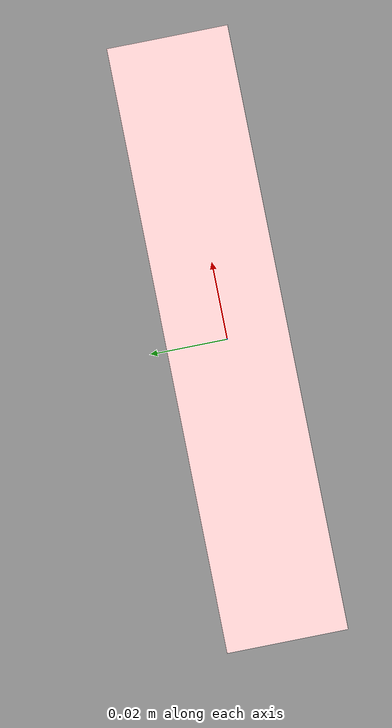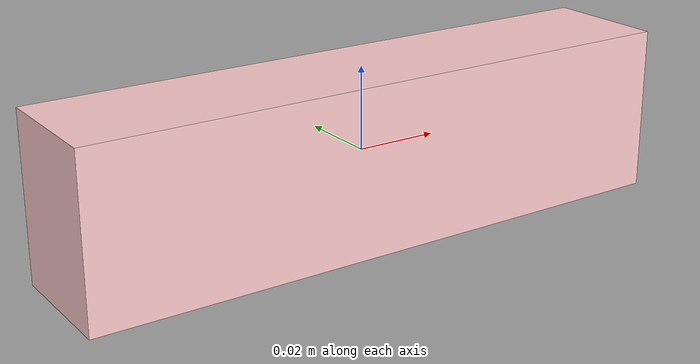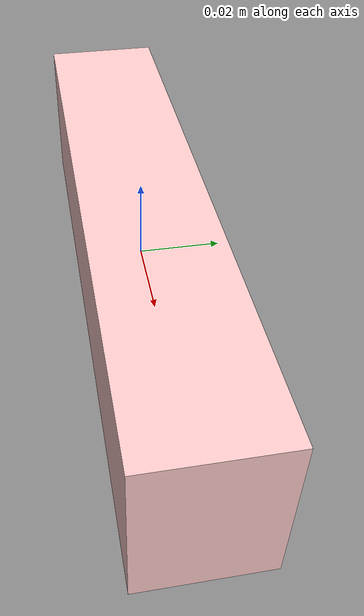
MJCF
<mujoco model="bridge_brick">
  <asset>
    <texture name="tex_brick" type="2d" builtin="flat" rgb1="1 0.8 0.8" width="512" height="512"/>
    <material name="mat_brick" texture="tex_brick" shininess="0.5" specular="0.5"/>
  </asset>
  <worldbody>
    <body>
      <body name="object">
        <geom name="brick_geom" type="box" size="0.075 0.015 0.02" material="mat_brick"
              density="800" friction="1.5 0.005 0.0001" solref="0.001 1" solimp="0.95 0.99 0.001"
              condim="4" group="0"/>
        <geom name="brick_vis" type="box" size="0.075 0.015 0.02" material="mat_brick"
              contype="0" conaffinity="0" group="1"/>

        <site name="bottom_site" pos="0 0 -0.02" size="0.002" rgba="0 0 0 0"/>
        <site name="top_site" pos="0 0 0.02" size="0.002" rgba="0 0 0 0"/>
        <site name="horizontal_radius_site" pos="0.075 0.015 0" size="0.002" rgba="0 0 0 0"/>
      </body>
    </body>
  </worldbody>
</mujoco>
